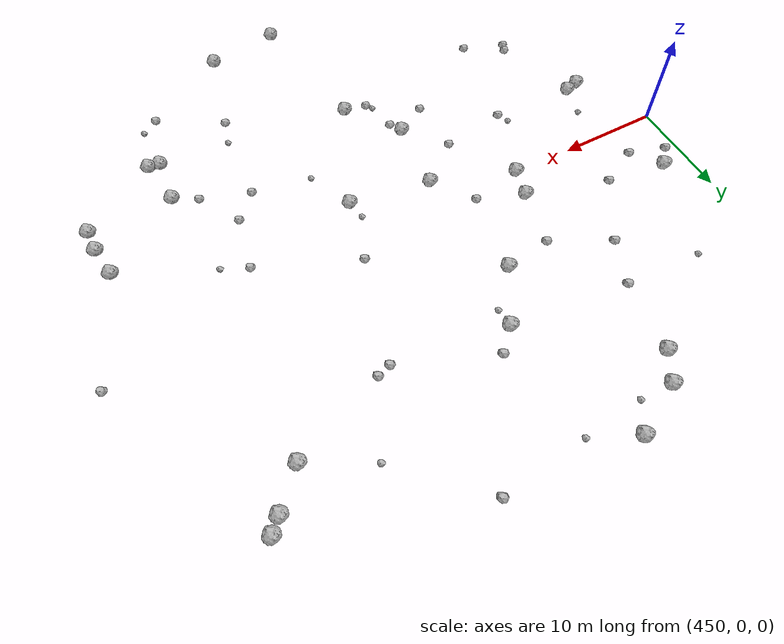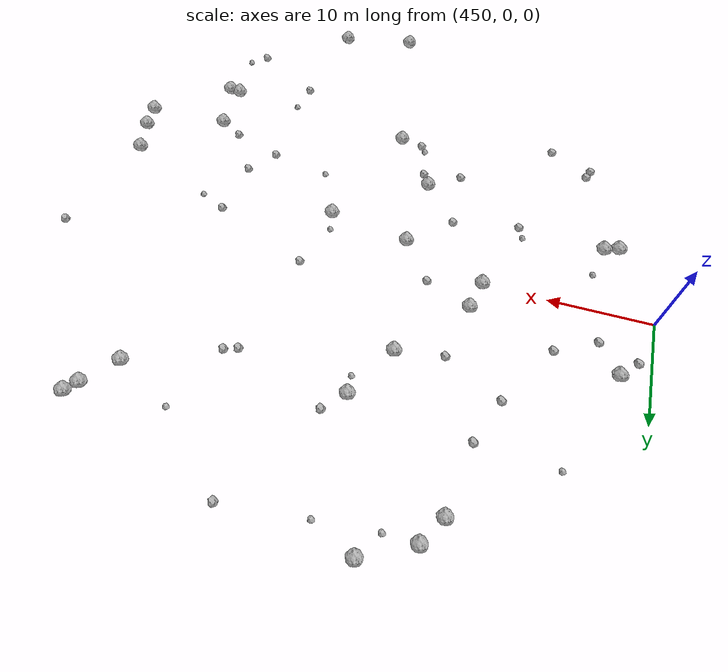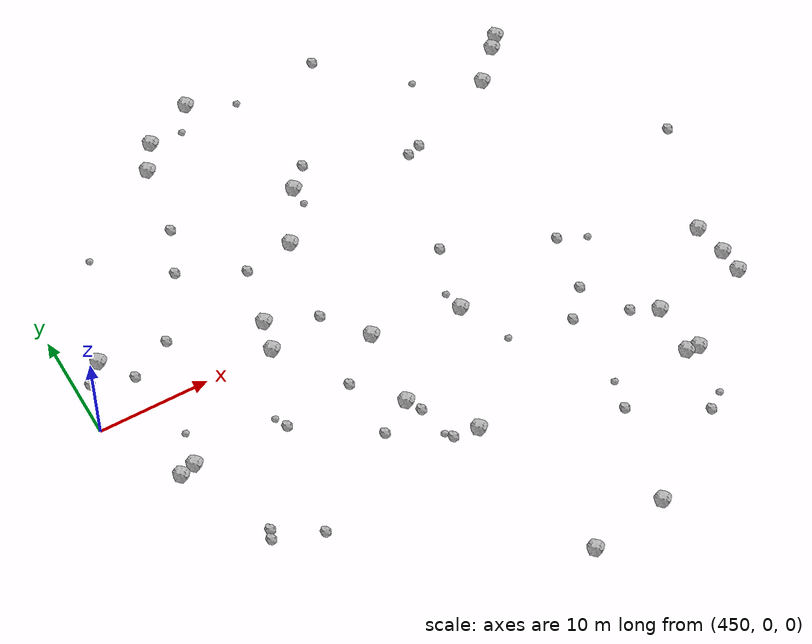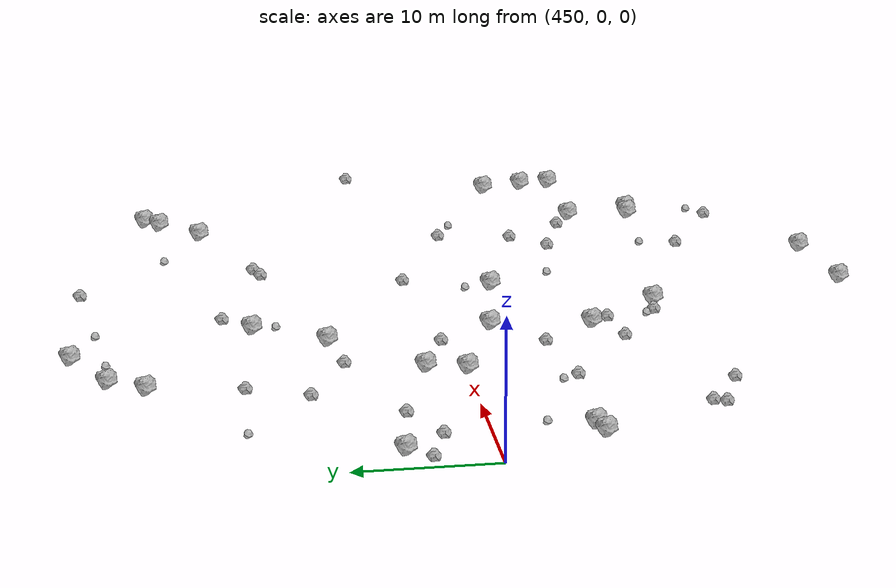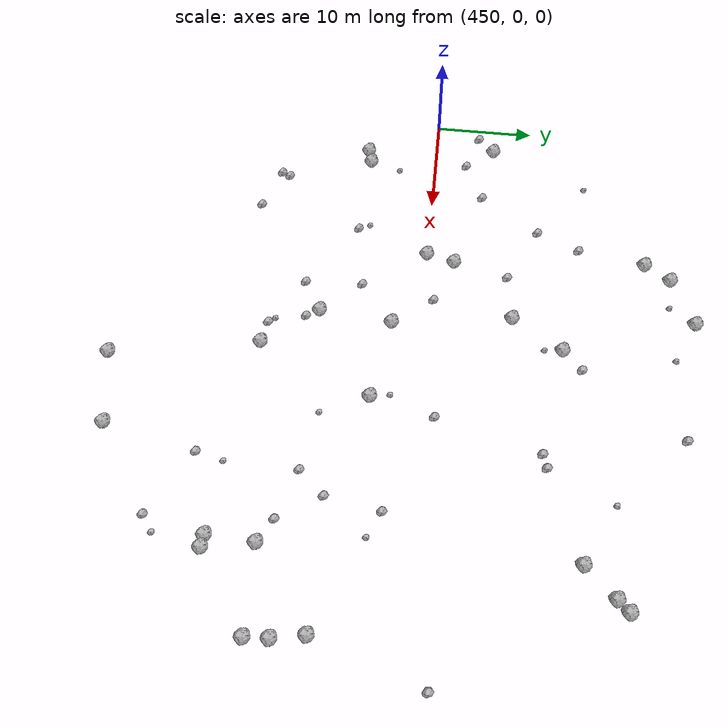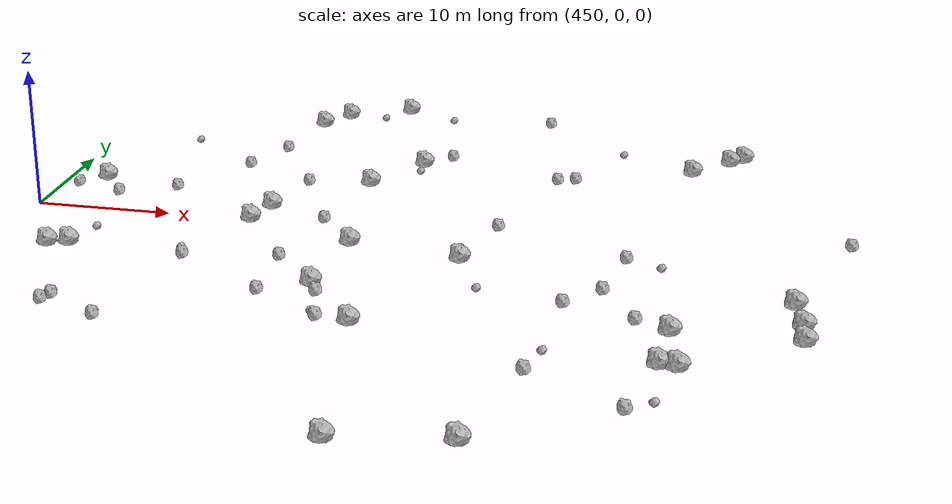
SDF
<sdf version="1.6">
 <world name="default">
  <include><uri>model://sun</uri></include>
  <model name="rock1_12_2">
   <include><uri>model://rock1</uri><pose>471.8428378711822 26.847638879027528 0.5 0 0 0</pose></include>
  </model>
  <model name="rock1_12_3">
   <include><uri>model://rock1</uri><pose>487.1375755613948 -28.77106406030623 0.5 0 0 0</pose></include>
  </model>
  <model name="rock1_12_4">
   <include><uri>model://rock1</uri><pose>497.8945402508161 -17.54104639820082 0.5 0 0 0</pose></include>
  </model>
  <model name="rock1_12_5">
   <include><uri>model://rock1</uri><pose>473.5984645384138 -10.132991945098698 0.5 0 0 0</pose></include>
  </model>
  <model name="rock1_12_6">
   <include><uri>model://rock1</uri><pose>504.4658960606624 -7.209608074328255 0.5 0 0 0</pose></include>
  </model>
  <model name="rock1_12_7">
   <include><uri>model://rock1</uri><pose>496.778216149848 -17.40639105153802 0.5 0 0 0</pose></include>
  </model>
  <model name="rock1_12_8">
   <include><uri>model://rock1</uri><pose>475.8577091566526 13.912240032029736 0.5 0 0 0</pose></include>
  </model>
  <model name="rock1_12_9">
   <include><uri>model://rock1</uri><pose>482.2898065080132 -4.225229460773477 0.5 0 0 0</pose></include>
  </model>
  <model name="rock1_12_10">
   <include><uri>model://rock1</uri><pose>505.10789890020084 -12.585468524129073 0.5 0 0 0</pose></include>
  </model>
  <model name="rock1_12_11">
   <include><uri>model://rock1</uri><pose>479.9520611848205 -29.956799998331185 0.5 0 0 0</pose></include>
  </model>
  <model name="rock1_12_12">
   <include><uri>model://rock1</uri><pose>466.96143360620016 2.734139826251422 0.5 0 0 0</pose></include>
  </model>
  <model name="rock1_12_13">
   <include><uri>model://rock1</uri><pose>466.234427454531 -0.07088539965493723 0.5 0 0 0</pose></include>
  </model>
  <model name="rock1_12_14">
   <include><uri>model://rock1</uri><pose>499.11920287980996 19.047611094619924 0.5 0 0 0</pose></include>
  </model>
  <model name="rock1_12_15">
   <include><uri>model://rock1</uri><pose>505.0156743544817 -10.304379654909901 0.5 0 0 0</pose></include>
  </model>
  <model name="rock1_12_16">
   <include><uri>model://rock1</uri><pose>472.80877567188577 8.877246539397042 0.5 0 0 0</pose></include>
  </model>
  <model name="rock1_12_17">
   <include><uri>model://rock1</uri><pose>453.918181111811 -7.311496966329834 0.5 0 0 0</pose></include>
  </model>
  <model name="rock1_12_18">
   <include><uri>model://rock1</uri><pose>477.5380991723779 -15.421294620615317 0.5 0 0 0</pose></include>
  </model>
  <model name="rock1_12_19">
   <include><uri>model://rock1</uri><pose>452.87458263759873 6.0294173832391 0.5 0 0 0</pose></include>
  </model>
  <model name="rock1_12_20">
   <include><uri>model://rock1</uri><pose>497.0403786429674 -12.753975644616851 0.5 0 0 0</pose></include>
  </model>
  <model name="rock1_12_21">
   <include><uri>model://rock1</uri><pose>465.5614713797153 21.98539655791705 0.5 0 0 0</pose></include>
  </model>
  <model name="rock1_12_22">
   <include><uri>model://rock1</uri><pose>455.33374094358675 -6.907323123042655 0.5 0 0 0</pose></include>
  </model>
  <model name="rock1_12_23">
   <include><uri>model://rock1</uri><pose>496.41505988558976 16.147996389463486 0.5 0 0 0</pose></include>
  </model>
  <model name="rock1_12_24">
   <include><uri>model://rock1</uri><pose>500.1281474761763 20.127429839431663 0.5 0 0 0</pose></include>
  </model>
  <model name="rock1_12_25">
   <include><uri>model://rock1</uri><pose>467.13568186326717 24.52509639424995 0.5 0 0 0</pose></include>
  </model>
  <model name="rock1_12_26">
   <include><uri>model://rock1</uri><pose>474.29318963901477 -2.916488337751648 0.5 0 0 0</pose></include>
  </model>
  <model name="rock2_12_0">
   <include><uri>model://rock2</uri><pose>464.38965856105295 15.362922637472032 0.3 0 0 0</pose></include>
  </model>
  <model name="rock2_12_1">
   <include><uri>model://rock2</uri><pose>468.1850139201576 8.232964499832278 0.3 0 0 0</pose></include>
  </model>
  <model name="rock2_12_2">
   <include><uri>model://rock2</uri><pose>508.0629385919215 3.449013823985453 0.3 0 0 0</pose></include>
  </model>
  <model name="rock2_12_3">
   <include><uri>model://rock2</uri><pose>458.8076512050232 5.176122502614241 0.3 0 0 0</pose></include>
  </model>
  <model name="rock2_12_4">
   <include><uri>model://rock2</uri><pose>470.2407807723074 -6.231550672410357 0.3 0 0 0</pose></include>
  </model>
  <model name="rock2_12_5">
   <include><uri>model://rock2</uri><pose>487.82862598413794 12.766990108944391 0.3 0 0 0</pose></include>
  </model>
  <model name="rock2_12_6">
   <include><uri>model://rock2</uri><pose>474.2828716757432 -11.38738987009432 0.3 0 0 0</pose></include>
  </model>
  <model name="rock2_12_7">
   <include><uri>model://rock2</uri><pose>461.6830715412921 -17.75063411671766 0.3 0 0 0</pose></include>
  </model>
  <model name="rock2_12_8">
   <include><uri>model://rock2</uri><pose>451.2536584976362 4.44532058710822 0.3 0 0 0</pose></include>
  </model>
  <model name="rock2_12_9">
   <include><uri>model://rock2</uri><pose>457.8479562795052 -15.351615716451473 0.3 0 0 0</pose></include>
  </model>
  <model name="rock2_12_10">
   <include><uri>model://rock2</uri><pose>495.41691899051835 -23.26518314096241 0.3 0 0 0</pose></include>
  </model>
  <model name="rock2_12_11">
   <include><uri>model://rock2</uri><pose>471.3827178340092 1.0311332039800654 0.3 0 0 0</pose></include>
  </model>
  <model name="rock2_12_12">
   <include><uri>model://rock2</uri><pose>486.5286334096742 12.331833403309048 0.3 0 0 0</pose></include>
  </model>
  <model name="rock2_12_13">
   <include><uri>model://rock2</uri><pose>489.15408072291444 -19.633458341352355 0.3 0 0 0</pose></include>
  </model>
  <model name="rock2_12_14">
   <include><uri>model://rock2</uri><pose>470.4847915108206 -11.92647402231582 0.3 0 0 0</pose></include>
  </model>
  <model name="rock2_12_15">
   <include><uri>model://rock2</uri><pose>462.6335193094842 11.103648288897077 0.3 0 0 0</pose></include>
  </model>
  <model name="rock2_12_16">
   <include><uri>model://rock2</uri><pose>475.2799211806981 -15.003105544832014 0.3 0 0 0</pose></include>
  </model>
  <model name="rock2_12_17">
   <include><uri>model://rock2</uri><pose>494.7738373385949 -11.449209950293415 0.3 0 0 0</pose></include>
  </model>
  <model name="rock2_12_18">
   <include><uri>model://rock2</uri><pose>492.2728592357238 -7.32007040096012 0.3 0 0 0</pose></include>
  </model>
  <model name="rock2_12_19">
   <include><uri>model://rock2</uri><pose>493.23829510066116 -1.9133266177249624 0.3 0 0 0</pose></include>
  </model>
  <model name="rock2_12_20">
   <include><uri>model://rock2</uri><pose>463.7350881977121 -7.30433873752791 0.3 0 0 0</pose></include>
  </model>
  <model name="rock2_12_21">
   <include><uri>model://rock2</uri><pose>490.0398979927019 -9.854100972211587 0.3 0 0 0</pose></include>
  </model>
  <model name="rock2_12_22">
   <include><uri>model://rock2</uri><pose>477.73097637448103 15.880731764218247 0.3 0 0 0</pose></include>
  </model>
  <model name="rock2_12_23">
   <include><uri>model://rock2</uri><pose>454.90526497305115 3.2617108391847935 0.3 0 0 0</pose></include>
  </model>
  <model name="rock2_12_24">
   <include><uri>model://rock2</uri><pose>457.4939523471139 -16.207906478424803 0.3 0 0 0</pose></include>
  </model>
  <model name="rock2_12_25">
   <include><uri>model://rock2</uri><pose>484.0353745189052 25.694585522474412 0.3 0 0 0</pose></include>
  </model>
  <model name="rock2_12_26">
   <include><uri>model://rock2</uri><pose>483.793671504815 2.088810808303961 0.3 0 0 0</pose></include>
  </model>
  <model name="rock3_12_0">
   <include><uri>model://rock3</uri><pose>489.8077607384179 -16.993520226505435 0.2 0 0 0</pose></include>
  </model>
  <model name="rock3_12_1">
   <include><uri>model://rock3</uri><pose>456.0545807167599 -3.8124744979852565 0.2 0 0 0</pose></include>
  </model>
  <model name="rock3_12_2">
   <include><uri>model://rock3</uri><pose>463.19842994322465 -6.227451677565657 0.2 0 0 0</pose></include>
  </model>
  <model name="rock3_12_3">
   <include><uri>model://rock3</uri><pose>475.9058964617492 24.90636373302084 0.2 0 0 0</pose></include>
  </model>
  <model name="rock3_12_4">
   <include><uri>model://rock3</uri><pose>456.777133749641 15.80881670411577 0.2 0 0 0</pose></include>
  </model>
  <model name="rock3_12_5">
   <include><uri>model://rock3</uri><pose>481.90047315923255 -2.321058623667117 0.2 0 0 0</pose></include>
  </model>
  <model name="rock3_12_6">
   <include><uri>model://rock3</uri><pose>495.675546130616 -3.109287897317671 0.2 0 0 0</pose></include>
  </model>
  <model name="rock3_12_7">
   <include><uri>model://rock3</uri><pose>470.15425873729384 24.432026635186773 0.2 0 0 0</pose></include>
  </model>
  <model name="rock3_12_8">
   <include><uri>model://rock3</uri><pose>474.78281921989435 -14.410107073356727 0.2 0 0 0</pose></include>
  </model>
  <model name="rock3_12_9">
   <include><uri>model://rock3</uri><pose>484.26134268353314 -8.817163702990765 0.2 0 0 0</pose></include>
  </model>
  <model name="rock3_12_10">
   <include><uri>model://rock3</uri><pose>475.8930209271167 12.17724681967426 0.2 0 0 0</pose></include>
  </model>
  <model name="rock3_12_11">
   <include><uri>model://rock3</uri><pose>490.77984192048893 19.13589330552592 0.2 0 0 0</pose></include>
  </model>
  <model name="rock3_12_12">
   <include><uri>model://rock3</uri><pose>496.9401060360868 -22.214605986374124 0.2 0 0 0</pose></include>
  </model>
 </world>
</sdf>
